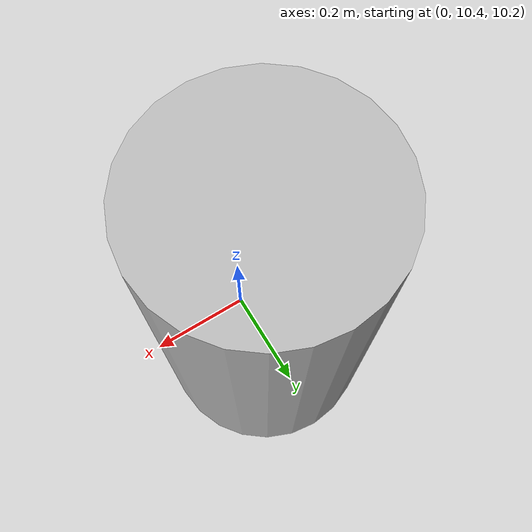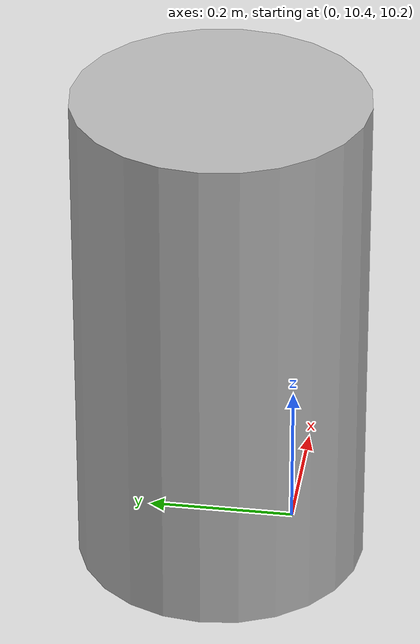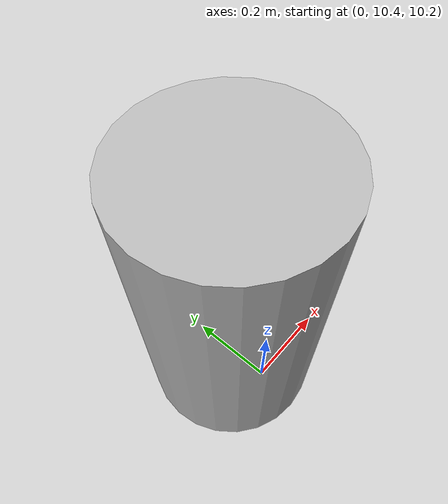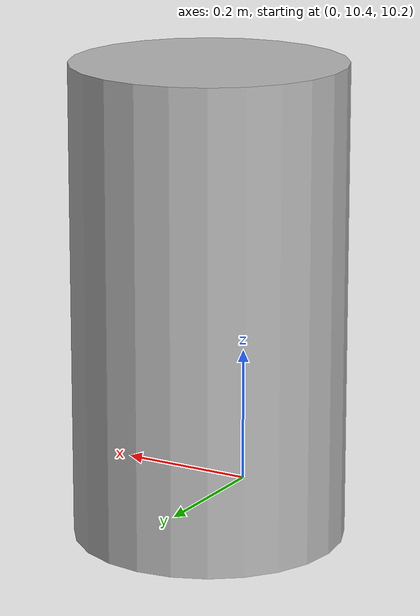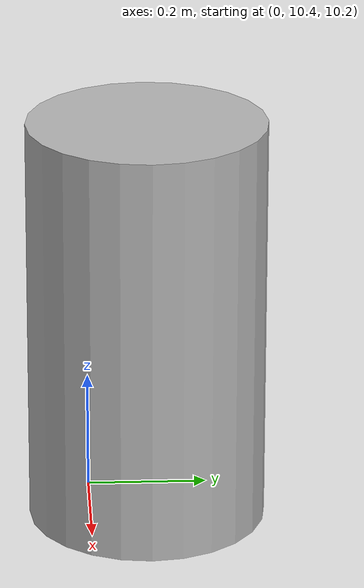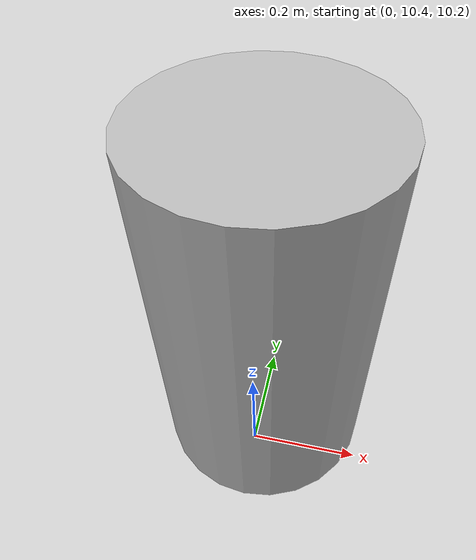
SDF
<?xml version="1.0" ?>
<sdf version="1.5">
  <world name="default">

    <!-- A global light source -->
    <include>
      <uri>model://sun</uri>
    </include>

    <!-- A ground plane -->
    <include>
      <uri>model://ground_plane</uri>
    </include>

    <model name="cylinder_clone1">
      <pose>0 10.5 10.5 0 0 0</pose>
      <link name="link">
        <collision name="collision">
          <geometry>
            <cylinder>
              <radius>0.2</radius>
              <length>0.7</length>
            </cylinder>
          </geometry>
          <surface>
            <friction>
              <ode>
                <mu>0.0</mu>
                <mu2>0.0</mu2>
              </ode>
            </friction>
          </surface>
        </collision>
        <visual name="visual">
          <geometry>
            <cylinder>
              <radius>0.2</radius>
              <length>0.7</length>
            </cylinder>
          </geometry>
          <material>
            <script>Gazebo/WoodPallet</script>
          </material>
        </visual>
      </link>
    </model>

  </world>
</sdf>
